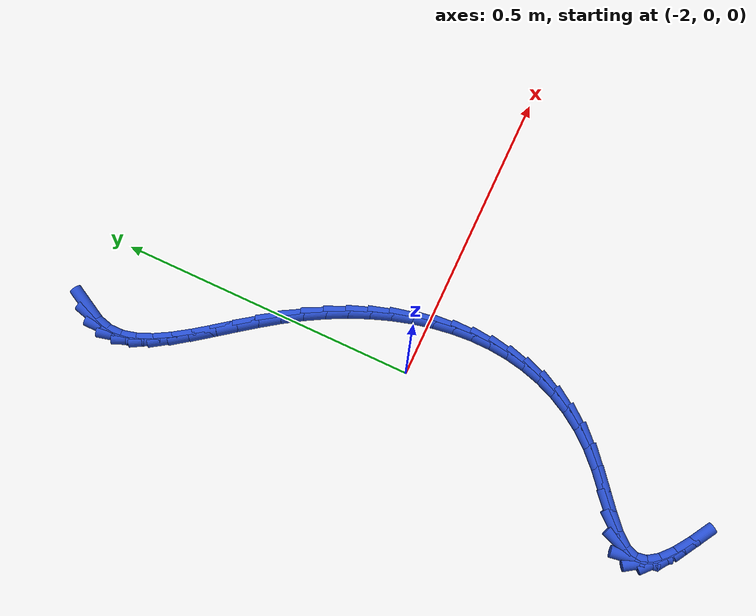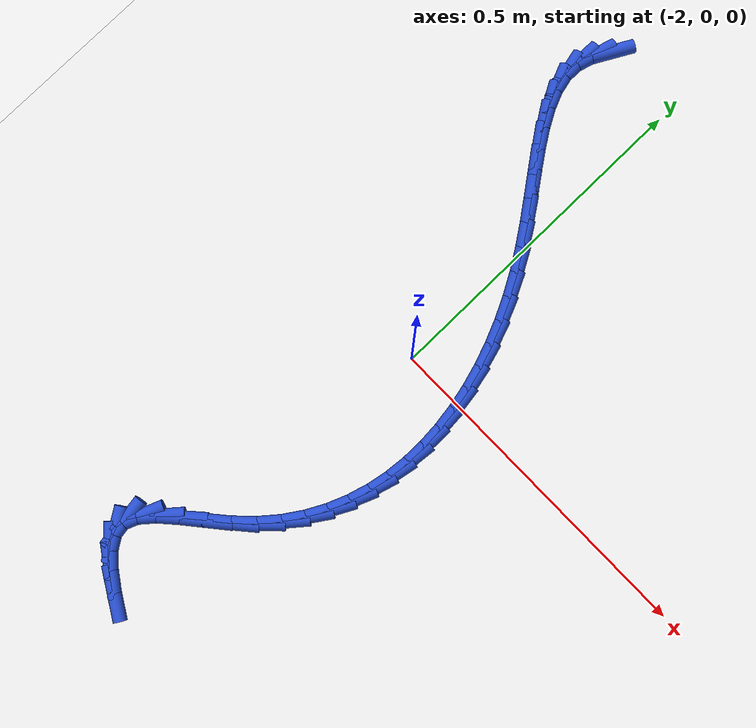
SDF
<sdf version="1.6">
 <world name="default">
  <model name="ground_plane">
   <static>1</static>
   <link name="link">
    <collision name="collision">
     <geometry><plane><normal>0 0 1</normal><size>100 100</size></plane></geometry>
     <surface><friction><ode><mu>100</mu><mu2>50</mu2></ode></friction></surface>
    </collision>
    <visual name="visual">
     <cast_shadows>0</cast_shadows>
     <geometry><plane><normal>0 0 1</normal><size>100 100</size></plane></geometry>
     <material>
      <script><uri>file://media/materials/scripts/gazebo.material</uri><name>Gazebo/WhiteGlow</name></script>
     </material>
    </visual>
   </link>
  </model>
  <model name="line">
   <link name="link_96">
    <pose>-2.121395955175392 0.5129648028968018 0.01 0 1.57 1.070060030570087</pose>
    <collision name="collision">
     <geometry><cylinder><radius>0.01</radius><length>0.08</length></cylinder></geometry>
    </collision>
    <visual name="visual">
     <material>
      <script><name>Gazebo/Blue</name><uri>file://media/materials/scripts/gazebo.material</uri></script>
     </material>
     <geometry><cylinder><radius>0.01</radius><length>0.08</length></cylinder></geometry>
    </visual>
   </link>
   <link name="link_97">
    <pose>-2.133452514932463 0.49093398821961565 0.01 0 1.57 1.3010905463776898</pose>
    <collision name="collision">
     <geometry><cylinder><radius>0.01</radius><length>0.08</length></cylinder></geometry>
    </collision>
    <visual name="visual">
     <material>
      <script><name>Gazebo/Blue</name><uri>file://media/materials/scripts/gazebo.material</uri></script>
     </material>
     <geometry><cylinder><radius>0.01</radius><length>0.08</length></cylinder></geometry>
    </visual>
   </link>
   <link name="link_98">
    <pose>-2.139745829945548 0.46816853098513256 0.01 0 1.57 -1.5670894802264577</pose>
    <collision name="collision">
     <geometry><cylinder><radius>0.01</radius><length>0.08</length></cylinder></geometry>
    </collision>
    <visual name="visual">
     <material>
      <script><name>Gazebo/Blue</name><uri>file://media/materials/scripts/gazebo.material</uri></script>
     </material>
     <geometry><cylinder><radius>0.01</radius><length>0.08</length></cylinder></geometry>
    </visual>
   </link>
   <link name="link_99">
    <pose>-2.13965812268142 0.44450775604122195 0.01 0 1.57 -1.3330248739087511</pose>
    <collision name="collision">
     <geometry><cylinder><radius>0.01</radius><length>0.08</length></cylinder></geometry>
    </collision>
    <visual name="visual">
     <material>
      <script><name>Gazebo/Blue</name><uri>file://media/materials/scripts/gazebo.material</uri></script>
     </material>
     <geometry><cylinder><radius>0.01</radius><length>0.08</length></cylinder></geometry>
    </visual>
   </link>
   <link name="link_100">
    <pose>-2.133699546782632 0.4199217074354418 0.01 0 1.57 -1.1662346618241064</pose>
    <collision name="collision">
     <geometry><cylinder><radius>0.01</radius><length>0.08</length></cylinder></geometry>
    </collision>
    <visual name="visual">
     <material>
      <script><name>Gazebo/Blue</name><uri>file://media/materials/scripts/gazebo.material</uri></script>
     </material>
     <geometry><cylinder><radius>0.01</radius><length>0.08</length></cylinder></geometry>
    </visual>
   </link>
   <link name="link_101">
    <pose>-2.1227832620979683 0.3944271347678499 0.01 0 1.57 -1.0550150074844977</pose>
    <collision name="collision">
     <geometry><cylinder><radius>0.01</radius><length>0.08</length></cylinder></geometry>
    </collision>
    <visual name="visual">
     <material>
      <script><name>Gazebo/Blue</name><uri>file://media/materials/scripts/gazebo.material</uri></script>
     </material>
     <geometry><cylinder><radius>0.01</radius><length>0.08</length></cylinder></geometry>
    </visual>
   </link>
   <link name="link_102">
    <pose>-2.1078229325525846 0.36804084605737103 0.01 0 1.57 -0.9849152137478456</pose>
    <collision name="collision">
     <geometry><cylinder><radius>0.01</radius><length>0.08</length></cylinder></geometry>
    </collision>
    <visual name="visual">
     <material>
      <script><name>Gazebo/Blue</name><uri>file://media/materials/scripts/gazebo.material</uri></script>
     </material>
     <geometry><cylinder><radius>0.01</radius><length>0.08</length></cylinder></geometry>
    </visual>
   </link>
   <link name="link_103">
    <pose>-2.089732222071634 0.3407796493229285 0.01 0 1.57 -0.9453335717010565</pose>
    <collision name="collision">
     <geometry><cylinder><radius>0.01</radius><length>0.08</length></cylinder></geometry>
    </collision>
    <visual name="visual">
     <material>
      <script><name>Gazebo/Blue</name><uri>file://media/materials/scripts/gazebo.material</uri></script>
     </material>
     <geometry><cylinder><radius>0.01</radius><length>0.08</length></cylinder></geometry>
    </visual>
   </link>
   <link name="link_104">
    <pose>-2.069424794580273 0.31266035258344704 0.01 0 1.57 -0.9297296772844875</pose>
    <collision name="collision">
     <geometry><cylinder><radius>0.01</radius><length>0.08</length></cylinder></geometry>
    </collision>
    <visual name="visual">
     <material>
      <script><name>Gazebo/Blue</name><uri>file://media/materials/scripts/gazebo.material</uri></script>
     </material>
     <geometry><cylinder><radius>0.01</radius><length>0.08</length></cylinder></geometry>
    </visual>
   </link>
   <link name="link_105">
    <pose>-2.047814314003652 0.28369976385784984 0.01 0 1.57 -0.9346178691394482</pose>
    <collision name="collision">
     <geometry><cylinder><radius>0.01</radius><length>0.08</length></cylinder></geometry>
    </collision>
    <visual name="visual">
     <material>
      <script><name>Gazebo/Blue</name><uri>file://media/materials/scripts/gazebo.material</uri></script>
     </material>
     <geometry><cylinder><radius>0.01</radius><length>0.08</length></cylinder></geometry>
    </visual>
   </link>
   <link name="link_106">
    <pose>-2.025814444266929 0.2539146911650615 0.01 0 1.57 -0.9587406089212923</pose>
    <collision name="collision">
     <geometry><cylinder><radius>0.01</radius><length>0.08</length></cylinder></geometry>
    </collision>
    <visual name="visual">
     <material>
      <script><name>Gazebo/Blue</name><uri>file://media/materials/scripts/gazebo.material</uri></script>
     </material>
     <geometry><cylinder><radius>0.01</radius><length>0.08</length></cylinder></geometry>
    </visual>
   </link>
   <link name="link_107">
    <pose>-2.004338849295257 0.22332194252400592 0.01 0 1.57 -1.0017150192429345</pose>
    <collision name="collision">
     <geometry><cylinder><radius>0.01</radius><length>0.08</length></cylinder></geometry>
    </collision>
    <visual name="visual">
     <material>
      <script><name>Gazebo/Blue</name><uri>file://media/materials/scripts/gazebo.material</uri></script>
     </material>
     <geometry><cylinder><radius>0.01</radius><length>0.08</length></cylinder></geometry>
    </visual>
   </link>
   <link name="link_108">
    <pose>-1.9842667399229286 0.1919432481703165 0.01 0 1.57 -1.0537869061648264</pose>
    <collision name="collision">
     <geometry><cylinder><radius>0.01</radius><length>0.08</length></cylinder></geometry>
    </collision>
    <visual name="visual">
     <material>
      <script><name>Gazebo/Blue</name><uri>file://media/materials/scripts/gazebo.material</uri></script>
     </material>
     <geometry><cylinder><radius>0.01</radius><length>0.08</length></cylinder></geometry>
    </visual>
   </link>
   <link name="link_109">
    <pose>-1.9660269438428102 0.1598646833191098 0.01 0 1.57 -1.1078545703254246</pose>
    <collision name="collision">
     <geometry><cylinder><radius>0.01</radius><length>0.08</length></cylinder></geometry>
    </collision>
    <visual name="visual">
     <material>
      <script><name>Gazebo/Blue</name><uri>file://media/materials/scripts/gazebo.material</uri></script>
     </material>
     <geometry><cylinder><radius>0.01</radius><length>0.08</length></cylinder></geometry>
    </visual>
   </link>
   <link name="link_110">
    <pose>-1.9497321422323317 0.12721749015375078 0.01 0 1.57 -1.1642466726661655</pose>
    <collision name="collision">
     <geometry><cylinder><radius>0.01</radius><length>0.08</length></cylinder></geometry>
    </collision>
    <visual name="visual">
     <material>
      <script><name>Gazebo/Blue</name><uri>file://media/materials/scripts/gazebo.material</uri></script>
     </material>
     <geometry><cylinder><radius>0.01</radius><length>0.08</length></cylinder></geometry>
    </visual>
   </link>
   <link name="link_111">
    <pose>-1.935488468992196 0.09413384624871621 0.01 0 1.57 -1.2234717351131403</pose>
    <collision name="collision">
     <geometry><cylinder><radius>0.01</radius><length>0.08</length></cylinder></geometry>
    </collision>
    <visual name="visual">
     <material>
      <script><name>Gazebo/Blue</name><uri>file://media/materials/scripts/gazebo.material</uri></script>
     </material>
     <geometry><cylinder><radius>0.01</radius><length>0.08</length></cylinder></geometry>
    </visual>
   </link>
   <link name="link_112">
    <pose>-1.9234020580231073 0.06074592917848095 0.01 0 1.57 -1.286050187252506</pose>
    <collision name="collision">
     <geometry><cylinder><radius>0.01</radius><length>0.08</length></cylinder></geometry>
    </collision>
    <visual name="visual">
     <material>
      <script><name>Gazebo/Blue</name><uri>file://media/materials/scripts/gazebo.material</uri></script>
     </material>
     <geometry><cylinder><radius>0.01</radius><length>0.08</length></cylinder></geometry>
    </visual>
   </link>
   <link name="link_113">
    <pose>-1.9135790432257687 0.027185916517521773 0.01 0 1.57 -1.3525008333482504</pose>
    <collision name="collision">
     <geometry><cylinder><radius>0.01</radius><length>0.08</length></cylinder></geometry>
    </collision>
    <visual name="visual">
     <material>
      <script><name>Gazebo/Blue</name><uri>file://media/materials/scripts/gazebo.material</uri></script>
     </material>
     <geometry><cylinder><radius>0.01</radius><length>0.08</length></cylinder></geometry>
    </visual>
   </link>
   <link name="link_114">
    <pose>-1.9061255585008834 -0.006414014159686407 0.01 0 1.57 -1.4233172917319081</pose>
    <collision name="collision">
     <geometry><cylinder><radius>0.01</radius><length>0.08</length></cylinder></geometry>
    </collision>
    <visual name="visual">
     <material>
      <script><name>Gazebo/Blue</name><uri>file://media/materials/scripts/gazebo.material</uri></script>
     </material>
     <geometry><cylinder><radius>0.01</radius><length>0.08</length></cylinder></geometry>
    </visual>
   </link>
   <link name="link_115">
    <pose>-1.901147737749155 -0.039921685278666894 0.01 0 1.57 -1.498931415701424</pose>
    <collision name="collision">
     <geometry><cylinder><radius>0.01</radius><length>0.08</length></cylinder></geometry>
    </collision>
    <visual name="visual">
     <material>
      <script><name>Gazebo/Blue</name><uri>file://media/materials/scripts/gazebo.material</uri></script>
     </material>
     <geometry><cylinder><radius>0.01</radius><length>0.08</length></cylinder></geometry>
    </visual>
   </link>
   <link name="link_116">
    <pose>-1.8987517148712858 -0.07320491926494423 0.01 0 1.57 1.5619311212006424</pose>
    <collision name="collision">
     <geometry><cylinder><radius>0.01</radius><length>0.08</length></cylinder></geometry>
    </collision>
    <visual name="visual">
     <material>
      <script><name>Gazebo/Blue</name><uri>file://media/materials/scripts/gazebo.material</uri></script>
     </material>
     <geometry><cylinder><radius>0.01</radius><length>0.08</length></cylinder></geometry>
    </visual>
   </link>
   <link name="link_117">
    <pose>-1.8990436237679809 -0.10613153854404353 0.01 0 1.57 1.4759467319199304</pose>
    <collision name="collision">
     <geometry><cylinder><radius>0.01</radius><length>0.08</length></cylinder></geometry>
    </collision>
    <visual name="visual">
     <material>
      <script><name>Gazebo/Blue</name><uri>file://media/materials/scripts/gazebo.material</uri></script>
     </material>
     <geometry><cylinder><radius>0.01</radius><length>0.08</length></cylinder></geometry>
    </visual>
   </link>
   <link name="link_118">
    <pose>-1.9021295983399427 -0.1385693655414872 0.01 0 1.57 1.3848256114942685</pose>
    <collision name="collision">
     <geometry><cylinder><radius>0.01</radius><length>0.08</length></cylinder></geometry>
    </collision>
    <visual name="visual">
     <material>
      <script><name>Gazebo/Blue</name><uri>file://media/materials/scripts/gazebo.material</uri></script>
     </material>
     <geometry><cylinder><radius>0.01</radius><length>0.08</length></cylinder></geometry>
    </visual>
   </link>
   <link name="link_119">
    <pose>-1.9081157724878746 -0.17038622268280024 0.01 0 1.57 1.2890131388924548</pose>
    <collision name="collision">
     <geometry><cylinder><radius>0.01</radius><length>0.08</length></cylinder></geometry>
    </collision>
    <visual name="visual">
     <material>
      <script><name>Gazebo/Blue</name><uri>file://media/materials/scripts/gazebo.material</uri></script>
     </material>
     <geometry><cylinder><radius>0.01</radius><length>0.08</length></cylinder></geometry>
    </visual>
   </link>
   <link name="link_120">
    <pose>-1.9171082801124801 -0.20144993239350695 0.01 0 1.57 1.189329905431569</pose>
    <collision name="collision">
     <geometry><cylinder><radius>0.01</radius><length>0.08</length></cylinder></geometry>
    </collision>
    <visual name="visual">
     <material>
      <script><name>Gazebo/Blue</name><uri>file://media/materials/scripts/gazebo.material</uri></script>
     </material>
     <geometry><cylinder><radius>0.01</radius><length>0.08</length></cylinder></geometry>
    </visual>
   </link>
   <link name="link_121">
    <pose>-1.9292132551144627 -0.2316283170991314 0.01 0 1.57 1.0869699978513703</pose>
    <collision name="collision">
     <geometry><cylinder><radius>0.01</radius><length>0.08</length></cylinder></geometry>
    </collision>
    <visual name="visual">
     <material>
      <script><name>Gazebo/Blue</name><uri>file://media/materials/scripts/gazebo.material</uri></script>
     </material>
     <geometry><cylinder><radius>0.01</radius><length>0.08</length></cylinder></geometry>
    </visual>
   </link>
   <link name="link_122">
    <pose>-1.944536831394526 -0.2607891992251985 0.01 0 1.57 0.9834322249442506</pose>
    <collision name="collision">
     <geometry><cylinder><radius>0.01</radius><length>0.08</length></cylinder></geometry>
    </collision>
    <visual name="visual">
     <material>
      <script><name>Gazebo/Blue</name><uri>file://media/materials/scripts/gazebo.material</uri></script>
     </material>
     <geometry><cylinder><radius>0.01</radius><length>0.08</length></cylinder></geometry>
    </visual>
   </link>
   <link name="link_123">
    <pose>-1.9631851428533722 -0.2888004011972309 0.01 0 1.57 0.8803850519618279</pose>
    <collision name="collision">
     <geometry><cylinder><radius>0.01</radius><length>0.08</length></cylinder></geometry>
    </collision>
    <visual name="visual">
     <material>
      <script><name>Gazebo/Blue</name><uri>file://media/materials/scripts/gazebo.material</uri></script>
     </material>
     <geometry><cylinder><radius>0.01</radius><length>0.08</length></cylinder></geometry>
    </visual>
   </link>
   <link name="link_124">
    <pose>-1.9852643233917062 -0.3155297454407537 0.01 0 1.57 0.7800817718248618</pose>
    <collision name="collision">
     <geometry><cylinder><radius>0.01</radius><length>0.08</length></cylinder></geometry>
    </collision>
    <visual name="visual">
     <material>
      <script><name>Gazebo/Blue</name><uri>file://media/materials/scripts/gazebo.material</uri></script>
     </material>
     <geometry><cylinder><radius>0.01</radius><length>0.08</length></cylinder></geometry>
    </visual>
   </link>
   <link name="link_125">
    <pose>-2.0108527387449775 -0.3408475209998716 0.01 0 1.57 0.7075244017114964</pose>
    <collision name="collision">
     <geometry><cylinder><radius>0.01</radius><length>0.08</length></cylinder></geometry>
    </collision>
    <visual name="visual">
     <material>
      <script><name>Gazebo/Blue</name><uri>file://media/materials/scripts/gazebo.material</uri></script>
     </material>
     <geometry><cylinder><radius>0.01</radius><length>0.08</length></cylinder></geometry>
    </visual>
   </link>
   <link name="link_126">
    <pose>-2.0387832827197223 -0.3647346509549612 0.01 0 1.57 0.6897584336175242</pose>
    <collision name="collision">
     <geometry><cylinder><radius>0.01</radius><length>0.08</length></cylinder></geometry>
    </collision>
    <visual name="visual">
     <material>
      <script><name>Gazebo/Blue</name><uri>file://media/materials/scripts/gazebo.material</uri></script>
     </material>
     <geometry><cylinder><radius>0.01</radius><length>0.08</length></cylinder></geometry>
    </visual>
   </link>
   <link name="link_127">
    <pose>-2.066167772387616 -0.3873249399259063 0.01 0 1.57 0.7327371097133236</pose>
    <collision name="collision">
     <geometry><cylinder><radius>0.01</radius><length>0.08</length></cylinder></geometry>
    </collision>
    <visual name="visual">
     <material>
      <script><name>Gazebo/Blue</name><uri>file://media/materials/scripts/gazebo.material</uri></script>
     </material>
     <geometry><cylinder><radius>0.01</radius><length>0.08</length></cylinder></geometry>
    </visual>
   </link>
   <link name="link_128">
    <pose>-2.089992005403058 -0.40876338671245266 0.01 0 1.57 0.8696386942970855</pose>
    <collision name="collision">
     <geometry><cylinder><radius>0.01</radius><length>0.08</length></cylinder></geometry>
    </collision>
    <visual name="visual">
     <material>
      <script><name>Gazebo/Blue</name><uri>file://media/materials/scripts/gazebo.material</uri></script>
     </material>
     <geometry><cylinder><radius>0.01</radius><length>0.08</length></cylinder></geometry>
    </visual>
   </link>
   <link name="link_129">
    <pose>-2.1072417794204448 -0.4291949901143449 0.01 0 1.57 1.1957684443943677</pose>
    <collision name="collision">
     <geometry><cylinder><radius>0.01</radius><length>0.08</length></cylinder></geometry>
    </collision>
    <visual name="visual">
     <material>
      <script><name>Gazebo/Blue</name><uri>file://media/materials/scripts/gazebo.material</uri></script>
     </material>
     <geometry><cylinder><radius>0.01</radius><length>0.08</length></cylinder></geometry>
    </visual>
   </link>
   <link name="link_130">
    <pose>-2.1149458825051615 -0.44876550015756245 0.01 0 1.57 -1.4151337547170262</pose>
    <collision name="collision">
     <geometry><cylinder><radius>0.01</radius><length>0.08</length></cylinder></geometry>
    </collision>
    <visual name="visual">
     <material>
      <script><name>Gazebo/Blue</name><uri>file://media/materials/scripts/gazebo.material</uri></script>
     </material>
     <geometry><cylinder><radius>0.01</radius><length>0.08</length></cylinder></geometry>
    </visual>
   </link>
   <link name="link_131">
    <pose>-2.111981830803824 -0.46765297204970513 0.01 0 1.57 -0.98426558399639</pose>
    <collision name="collision">
     <geometry><cylinder><radius>0.01</radius><length>0.08</length></cylinder></geometry>
    </collision>
    <visual name="visual">
     <material>
      <script><name>Gazebo/Blue</name><uri>file://media/materials/scripts/gazebo.material</uri></script>
     </material>
     <geometry><cylinder><radius>0.01</radius><length>0.08</length></cylinder></geometry>
    </visual>
   </link>
   <link name="link_132">
    <pose>-2.0997367389811146 -0.4860793144112901 0.01 0 1.57 -0.7390431878994239</pose>
    <collision name="collision">
     <geometry><cylinder><radius>0.01</radius><length>0.08</length></cylinder></geometry>
    </collision>
    <visual name="visual">
     <material>
      <script><name>Gazebo/Blue</name><uri>file://media/materials/scripts/gazebo.material</uri></script>
     </material>
     <geometry><cylinder><radius>0.01</radius><length>0.08</length></cylinder></geometry>
    </visual>
   </link>
   <link name="link_133">
    <pose>-2.0797767685100124 -0.5042695645758786 0.01 0 1.57 -0.6082311006065508</pose>
    <collision name="collision">
     <geometry><cylinder><radius>0.01</radius><length>0.08</length></cylinder></geometry>
    </collision>
    <visual name="visual">
     <material>
      <script><name>Gazebo/Blue</name><uri>file://media/materials/scripts/gazebo.material</uri></script>
     </material>
     <geometry><cylinder><radius>0.01</radius><length>0.08</length></cylinder></geometry>
    </visual>
   </link>
   <link name="link_134">
    <pose>-2.0536680808634973 -0.5224487598770313 0.01 0 1.57 -0.5399026129163416</pose>
    <collision name="collision">
     <geometry><cylinder><radius>0.01</radius><length>0.08</length></cylinder></geometry>
    </collision>
    <visual name="visual">
     <material>
      <script><name>Gazebo/Blue</name><uri>file://media/materials/scripts/gazebo.material</uri></script>
     </material>
     <geometry><cylinder><radius>0.01</radius><length>0.08</length></cylinder></geometry>
    </visual>
   </link>
  </model>
 </world>
</sdf>
